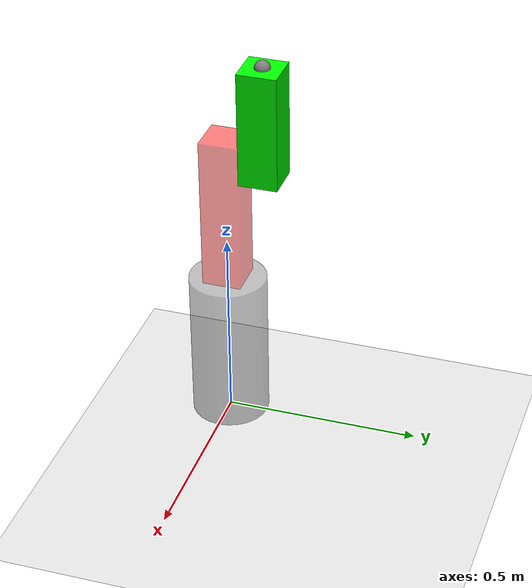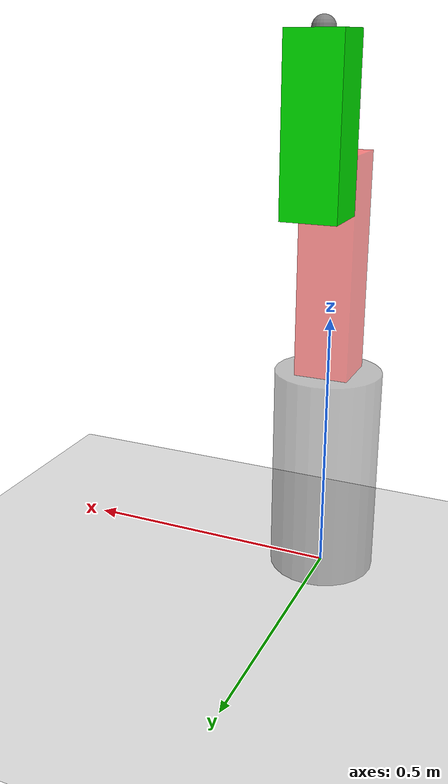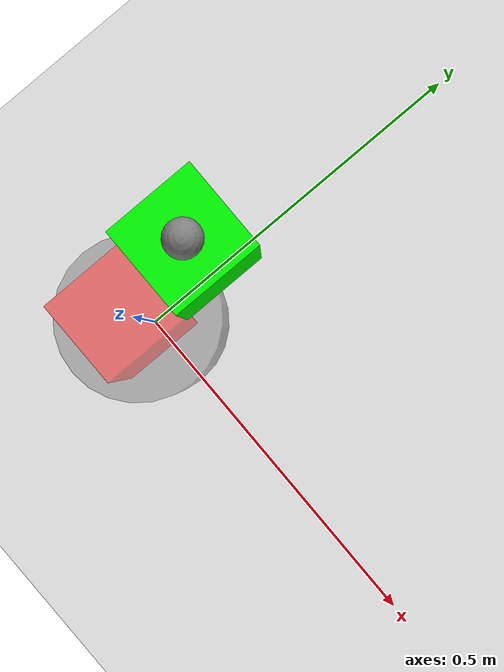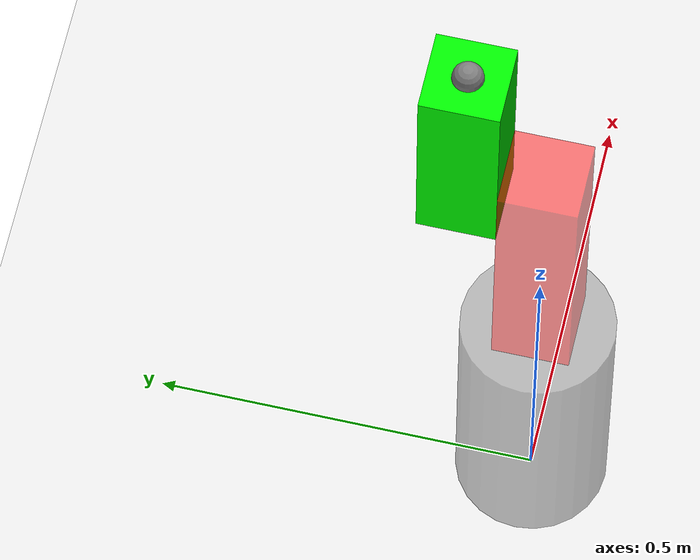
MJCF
<!-- simple_arm.xml -->
<mujoco>
  <option timestep="0.002"/>

  <worldbody>
    <!-- 地面 -->
    <geom type="plane" size="2 2 0.5" rgba="0.9 0.9 0.9 1"/>
    <light pos="0 0 3"/>

    <!-- 基座 -->
    <body name="base" pos="0 0 0.2">
      <geom type="cylinder" size="0.1 0.2" rgba="0.5 0.5 0.5 0.5"/>

      <!-- 第一个连杆 -->
      <body name="link1" pos="0 0 0.2">
        <joint name="joint1" type="hinge" axis="0 0 1" range="-180 180"/>
        <geom type="box" size="0.05 0.05 0.2" pos="0 0 0.2" rgba="1 0 0 0.5"/>

        <!-- 第二个连杆 -->
        <body name="link2" pos="0 0.1 0.35">
          <joint name="joint2" type="hinge" axis="0 1 0" range="-180 180"/>
          <geom type="box" size="0.05 0.05 0.15" pos="0 0 0.10" rgba="0 1 0 1"/>

          <!-- 末端 -->
          <site name="end_effector" pos="0 0 0.25" size="0.02"/>
        </body>
      </body>
    </body>
  </worldbody>

  <actuator>
    <motor name="motor1" joint="joint1" gear="1" ctrlrange="-5 5"/>
    <motor name="motor2" joint="joint2" gear="1" ctrlrange="-20 20"/>
  </actuator>
</mujoco>
